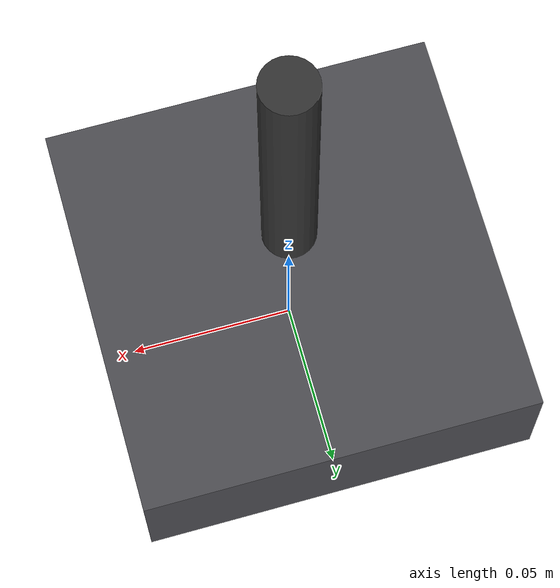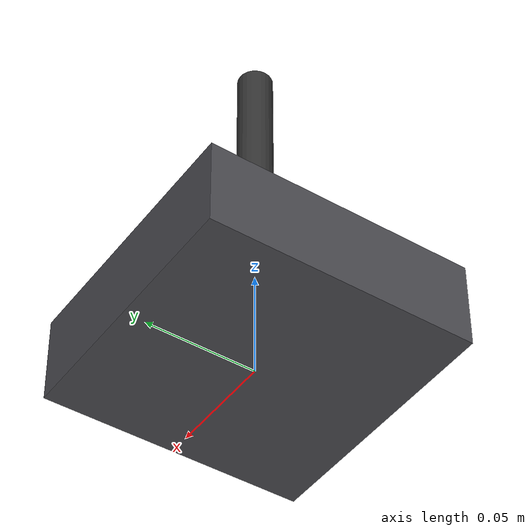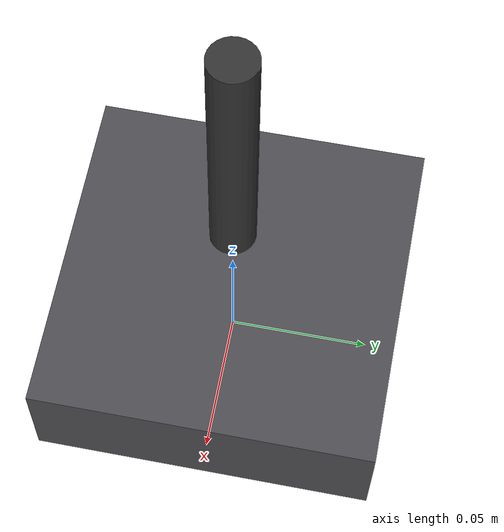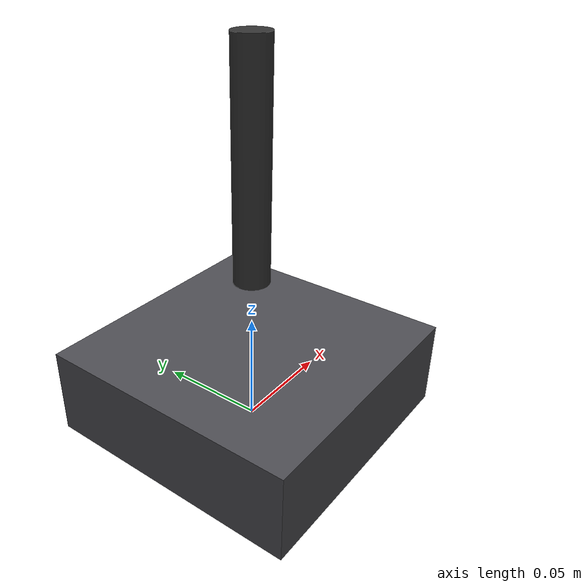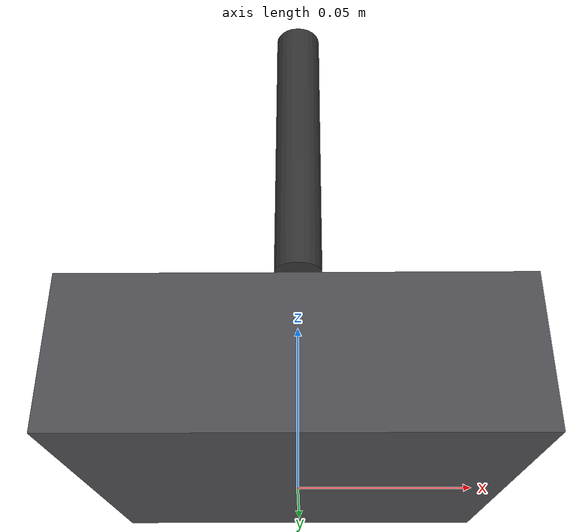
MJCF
<?xml version="1.0" encoding="utf-8"?>
<mujoco model="gunshot_residue_collector">
  <compiler angle="radian" autolimits="true"/>
  <default>
    <default class="body"><geom contype="1" conaffinity="1"/></default>
  </default>
  <worldbody>
    <body name="base">
      <geom type="box" size="0.06 0.06 0.02" pos="0 0 0.02" rgba="0.3 0.3 0.32 1" class="body"/>
      <body name="swab_arm" pos="0 0 0.12">
        <joint name="swab_arm_joint" type="slide" axis="0 0 1" range="-0.06 0" damping="1.0" frictionloss="0.3"/>
  <geom type="cylinder" size="0.008 0.05" pos="0 0 0" rgba="0.2 0.2 0.2 1" class="body"/>
      </body>
    </body>
  </worldbody>
</mujoco>
